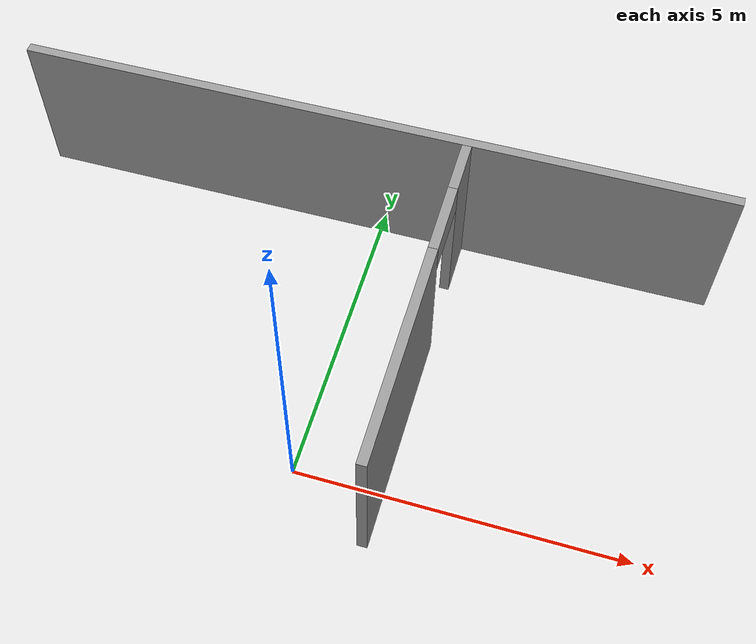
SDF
<sdf version="1.7">
 <world name="default">
  <model name="demo_clean">
   <link name="Wall_25">
    <pose>1.30015 4.30512 0 0 0 -1.5708</pose>
    <visual name="Wall_25_Visual">
     <pose>0 0 1.25 0 -0 0</pose>
     <geometry><box><size>1 0.15 2.5</size></box></geometry>
     <material>
      <script><uri>file://media/materials/scripts/gazebo.material</uri><name>Gazebo/Grey</name></script>
      <ambient>1 1 1 1</ambient>
      <shader type="pixel"/>
     </material>
     <meta><layer>0</layer></meta>
    </visual>
    <collision name="Wall_25_Collision">
     <pose>0 0 1.25 0 -0 0</pose>
     <geometry><box><size>1 0.15 2.5</size></box></geometry>
     <surface>
      <friction>
       <ode><mu>1</mu><mu2>1</mu2><fdir1>0 0 0</fdir1><slip1>0</slip1><slip2>0</slip2></ode>
       <torsional>
        <coefficient>1</coefficient>
        <patch_radius>0</patch_radius>
        <surface_radius>0</surface_radius>
        <use_patch_radius>1</use_patch_radius>
        <ode><slip>0</slip></ode>
       </torsional>
      </friction>
      <bounce><restitution_coefficient>0</restitution_coefficient><threshold>1e+06</threshold></bounce>
      <contact>
       <collide_without_contact>0</collide_without_contact>
       <collide_without_contact_bitmask>1</collide_without_contact_bitmask>
       <collide_bitmask>1</collide_bitmask>
       <ode>
        <soft_cfm>0</soft_cfm>
        <soft_erp>0.2</soft_erp>
        <kp>1e+13</kp>
        <kd>1</kd>
        <max_vel>0.01</max_vel>
        <min_depth>0</min_depth>
       </ode>
       <bullet>
        <split_impulse>1</split_impulse>
        <split_impulse_penetration_threshold>-0.01</split_impulse_penetration_threshold>
        <soft_cfm>0</soft_cfm>
        <soft_erp>0.2</soft_erp>
        <kp>1e+13</kp>
        <kd>1</kd>
       </bullet>
      </contact>
     </surface>
    </collision>
   </link>
   <link name="Wall_27">
    <pose>1.30016 0.927106 0 0 0 -1.5708</pose>
    <visual name="Wall_27_Visual">
     <pose>0 0 1.25 0 -0 0</pose>
     <geometry><box><size>3.5 0.15 2.5</size></box></geometry>
     <material>
      <script><uri>file://media/materials/scripts/gazebo.material</uri><name>Gazebo/Grey</name></script>
      <ambient>1 1 1 1</ambient>
      <shader type="pixel"/>
     </material>
     <meta><layer>0</layer></meta>
    </visual>
    <collision name="Wall_27_Collision">
     <pose>0 0 1.25 0 -0 0</pose>
     <geometry><box><size>3.5 0.15 2.5</size></box></geometry>
     <surface>
      <friction>
       <ode><mu>1</mu><mu2>1</mu2><fdir1>0 0 0</fdir1><slip1>0</slip1><slip2>0</slip2></ode>
       <torsional>
        <coefficient>1</coefficient>
        <patch_radius>0</patch_radius>
        <surface_radius>0</surface_radius>
        <use_patch_radius>1</use_patch_radius>
        <ode><slip>0</slip></ode>
       </torsional>
      </friction>
      <bounce><restitution_coefficient>0</restitution_coefficient><threshold>1e+06</threshold></bounce>
      <contact>
       <collide_without_contact>0</collide_without_contact>
       <collide_without_contact_bitmask>1</collide_without_contact_bitmask>
       <collide_bitmask>1</collide_bitmask>
       <ode>
        <soft_cfm>0</soft_cfm>
        <soft_erp>0.2</soft_erp>
        <kp>1e+13</kp>
        <kd>1</kd>
        <max_vel>0.01</max_vel>
        <min_depth>0</min_depth>
       </ode>
       <bullet>
        <split_impulse>1</split_impulse>
        <split_impulse_penetration_threshold>-0.01</split_impulse_penetration_threshold>
        <soft_cfm>0</soft_cfm>
        <soft_erp>0.2</soft_erp>
        <kp>1e+13</kp>
        <kd>1</kd>
       </bullet>
      </contact>
     </surface>
    </collision>
   </link>
   <link name="Wall_28_clone_clone">
    <pose>1.3006 3.24462 1.01168 0 0 -1.57004</pose>
    <inertial>
     <inertia><ixx>0</ixx><ixy>0</ixy><ixz>0</ixz><iyy>0</iyy><iyz>0</iyz><izz>0</izz></inertia>
     <mass>0</mass>
    </inertial>
    <gravity>0</gravity>
    <visual name="Wall_28_Visual">
     <pose>0 0 1.25 0 -0 0</pose>
     <geometry><box><size>1.13952 0.15 0.476648</size></box></geometry>
     <material>
      <script><uri>file://media/materials/scripts/gazebo.material</uri><name>Gazebo/Grey</name></script>
      <ambient>1 1 1 1</ambient>
      <shader type="pixel"><normal_map>__default__</normal_map></shader>
     </material>
     <meta><layer>0</layer></meta>
    </visual>
    <collision name="Wall_28_Collision">
     <pose>0 0 1.25 0 -0 0</pose>
     <geometry><box><size>1.13952 0.15 0.476648</size></box></geometry>
     <surface>
      <friction>
       <ode><mu>1</mu><mu2>1</mu2><fdir1>0 0 0</fdir1><slip1>0</slip1><slip2>0</slip2></ode>
       <torsional>
        <coefficient>1</coefficient>
        <patch_radius>0</patch_radius>
        <surface_radius>0</surface_radius>
        <use_patch_radius>1</use_patch_radius>
        <ode><slip>0</slip></ode>
       </torsional>
      </friction>
      <bounce><restitution_coefficient>0</restitution_coefficient><threshold>1e+06</threshold></bounce>
      <contact>
       <collide_without_contact>0</collide_without_contact>
       <collide_without_contact_bitmask>1</collide_without_contact_bitmask>
       <collide_bitmask>1</collide_bitmask>
       <ode>
        <soft_cfm>0</soft_cfm>
        <soft_erp>0.2</soft_erp>
        <kp>1e+13</kp>
        <kd>1</kd>
        <max_vel>0.01</max_vel>
        <min_depth>0</min_depth>
       </ode>
       <bullet>
        <split_impulse>1</split_impulse>
        <split_impulse_penetration_threshold>-0.01</split_impulse_penetration_threshold>
        <soft_cfm>0</soft_cfm>
        <soft_erp>0.2</soft_erp>
        <kp>1e+13</kp>
        <kd>1</kd>
       </bullet>
      </contact>
     </surface>
    </collision>
   </link>
   <link name="Wall_9">
    <pose>-0.246486 4.74118 0 0 -0 0</pose>
    <visual name="Wall_9_Visual">
     <pose>0 0 1.25 0 -0 0</pose>
     <geometry><box><size>11.25 0.15 2.5</size></box></geometry>
     <material>
      <script><uri>file://media/materials/scripts/gazebo.material</uri><name>Gazebo/Grey</name></script>
      <ambient>1 1 1 1</ambient>
      <shader type="pixel"/>
     </material>
     <meta><layer>0</layer></meta>
    </visual>
    <collision name="Wall_9_Collision">
     <pose>0 0 1.25 0 -0 0</pose>
     <geometry><box><size>11.25 0.15 2.5</size></box></geometry>
     <surface>
      <friction>
       <ode><mu>1</mu><mu2>1</mu2><fdir1>0 0 0</fdir1><slip1>0</slip1><slip2>0</slip2></ode>
       <torsional>
        <coefficient>1</coefficient>
        <patch_radius>0</patch_radius>
        <surface_radius>0</surface_radius>
        <use_patch_radius>1</use_patch_radius>
        <ode><slip>0</slip></ode>
       </torsional>
      </friction>
      <bounce><restitution_coefficient>0</restitution_coefficient><threshold>1e+06</threshold></bounce>
      <contact>
       <collide_without_contact>0</collide_without_contact>
       <collide_without_contact_bitmask>1</collide_without_contact_bitmask>
       <collide_bitmask>1</collide_bitmask>
       <ode>
        <soft_cfm>0</soft_cfm>
        <soft_erp>0.2</soft_erp>
        <kp>1e+13</kp>
        <kd>1</kd>
        <max_vel>0.01</max_vel>
        <min_depth>0</min_depth>
       </ode>
       <bullet>
        <split_impulse>1</split_impulse>
        <split_impulse_penetration_threshold>-0.01</split_impulse_penetration_threshold>
        <soft_cfm>0</soft_cfm>
        <soft_erp>0.2</soft_erp>
        <kp>1e+13</kp>
        <kd>1</kd>
       </bullet>
      </contact>
     </surface>
    </collision>
   </link>
   <static>1</static>
  </model>
 </world>
</sdf>
